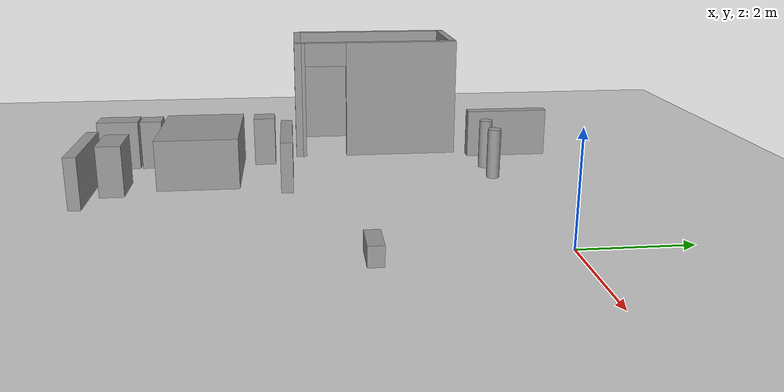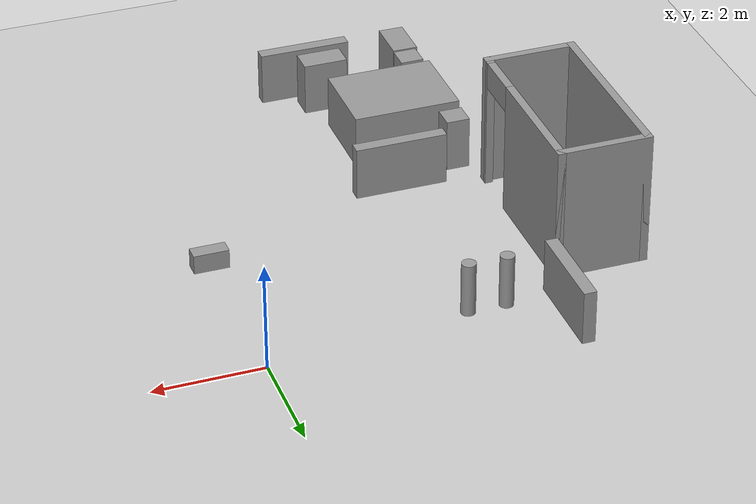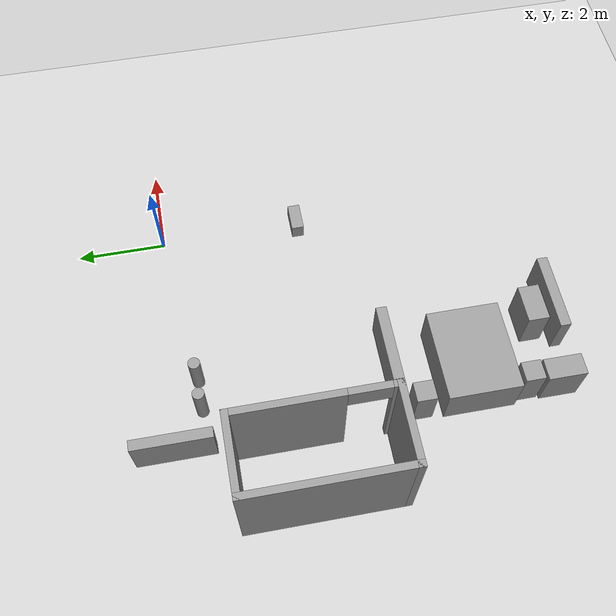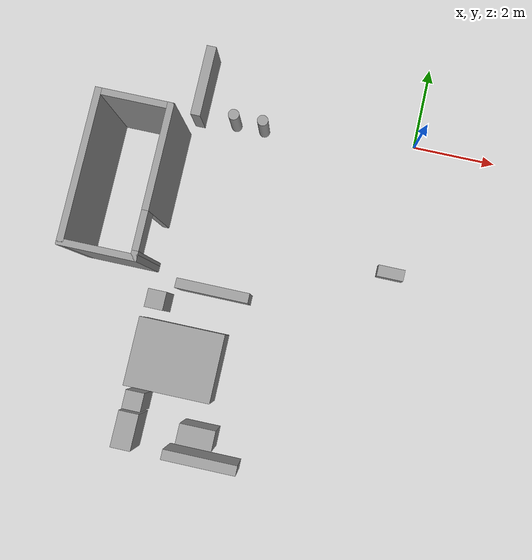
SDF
<sdf version="1.9">
 <world name="default">
  <model name="ground_plane">
   <static>true</static>
   <link name="link">
    <collision name="collision">
     <geometry><plane><normal>0 0 1</normal><size>100 100</size></plane></geometry>
     <surface><friction><ode><mu>100</mu><mu2>50</mu2></ode></friction></surface>
    </collision>
    <visual name="visual">
     <cast_shadows>false</cast_shadows>
     <geometry><plane><normal>0 0 1</normal><size>100 100</size></plane></geometry>
     <material>
      <script><uri>file://media/materials/scripts/gazebo.material</uri><name>Gazebo/Grey</name></script>
     </material>
    </visual>
   </link>
  </model>
  <model name="cma_varanda1">
   <pose>-6.3251799999999996 -2.5931299999999999 0 0 0 0</pose>
   <link name="Wall_0">
    <pose>0.80000000000000004 0 0 0 0 -1.5708</pose>
    <visual name="Wall_0_Visual_0">
     <pose>-0.55249999999999999 0 1.25 0 0 0</pose>
     <geometry><box><size>2.395 0.14999999999999999 2.5</size></box></geometry>
     <material>
      <script><uri>file://media/materials/scripts/gazebo.material</uri><name>Gazebo/Grey</name></script>
      <ambient>1 1 1 1</ambient>
     </material>
    </visual>
    <collision name="Wall_0_Collision_0">
     <geometry><box><size>2.395 0.14999999999999999 2.5</size></box></geometry>
     <pose>-0.55249999999999999 0 1.25 0 0 0</pose>
    </collision>
    <visual name="Wall_0_Visual_1">
     <pose>1.6375 0 1.25 0 0 0</pose>
     <geometry><box><size>0.22500000000000001 0.14999999999999999 2.5</size></box></geometry>
     <material>
      <script><uri>file://media/materials/scripts/gazebo.material</uri><name>Gazebo/Grey</name></script>
      <ambient>1 1 1 1</ambient>
     </material>
    </visual>
    <collision name="Wall_0_Collision_1">
     <geometry><box><size>0.22500000000000001 0.14999999999999999 2.5</size></box></geometry>
     <pose>1.6375 0 1.25 0 0 0</pose>
    </collision>
    <visual name="Wall_0_Visual_2">
     <pose>1.085 0 2.25 0 0 0</pose>
     <geometry><box><size>0.88 0.14999999999999999 0.5</size></box></geometry>
     <material>
      <script><uri>file://media/materials/scripts/gazebo.material</uri><name>Gazebo/Grey</name></script>
      <ambient>1 1 1 1</ambient>
     </material>
    </visual>
    <collision name="Wall_0_Collision_2">
     <geometry><box><size>0.88 0.14999999999999999 0.5</size></box></geometry>
     <pose>1.085 0 2.25 0 0 0</pose>
    </collision>
   </link>
   <link name="Wall_1">
    <collision name="Wall_1_Collision">
     <geometry><box><size>1.75 0.14999999999999999 2.5</size></box></geometry>
     <pose>0 0 1.25 0 0 0</pose>
    </collision>
    <visual name="Wall_1_Visual">
     <pose>0 0 1.25 0 0 0</pose>
     <geometry><box><size>1.75 0.14999999999999999 2.5</size></box></geometry>
     <material>
      <script><uri>file://media/materials/scripts/gazebo.material</uri><name>Gazebo/Grey</name></script>
      <ambient>1 1 1 1</ambient>
     </material>
    </visual>
    <pose>0 -1.675 0 0 0 3.1415899999999999</pose>
   </link>
   <link name="Wall_2">
    <collision name="Wall_2_Collision">
     <geometry><box><size>3.5 0.14999999999999999 2.5</size></box></geometry>
     <pose>0 0 1.25 0 0 0</pose>
    </collision>
    <visual name="Wall_2_Visual">
     <pose>0 0 1.25 0 0 0</pose>
     <geometry><box><size>3.5 0.14999999999999999 2.5</size></box></geometry>
     <material>
      <script><uri>file://media/materials/scripts/gazebo.material</uri><name>Gazebo/Grey</name></script>
      <ambient>1 1 1 1</ambient>
     </material>
    </visual>
    <pose>-0.80000000000000004 0 0 0 0 1.5708</pose>
   </link>
   <link name="Wall_3">
    <collision name="Wall_3_Collision">
     <geometry><box><size>1.75 0.14999999999999999 2.5</size></box></geometry>
     <pose>0 0 1.25 0 0 0</pose>
    </collision>
    <visual name="Wall_3_Visual">
     <pose>0 0 1.25 0 0 0</pose>
     <geometry><box><size>1.75 0.14999999999999999 2.5</size></box></geometry>
     <material>
      <script><uri>file://media/materials/scripts/gazebo.material</uri><name>Gazebo/Grey</name></script>
      <ambient>1 1 1 1</ambient>
     </material>
    </visual>
    <pose>0 1.675 0 0 0 0</pose>
   </link>
   <static>true</static>
  </model>
  <model name="cma_cama_c">
   <link name="link_0">
    <pose>5.0000000000000004e-06 -3.9999999999999998e-06 0 0 0 0</pose>
    <inertial>
     <mass>3.1835800000000001</mass>
     <inertia>
      <ixx>0.93486199999999997</ixx>
      <ixy>0</ixy>
      <ixz>0</ixz>
      <iyy>1.3306899999999999</iyy>
      <iyz>0</iyz>
      <izz>1.7349600000000001</izz>
     </inertia>
    </inertial>
    <visual name="visual">
     <geometry><box><size>2.0039400000000001 1.58866 1</size></box></geometry>
     <material>
      <lighting>true</lighting>
      <script><uri>file://media/materials/scripts/gazebo.material</uri><name>Gazebo/Grey</name></script>
      <ambient>0.300000012 0.300000012 0.300000012 1</ambient>
      <diffuse>0.699999988 0.699999988 0.699999988 1</diffuse>
      <specular>0.00999999978 0.00999999978 0.00999999978 1</specular>
      <emissive>0 0 0 1</emissive>
     </material>
    </visual>
    <collision name="collision">
     <geometry><box><size>2.0039400000000001 1.58866 1</size></box></geometry>
     <surface>
      <friction>
       <ode><mu>1</mu><mu2>1</mu2><fdir1>0 0 0</fdir1><slip1>0</slip1><slip2>0</slip2></ode>
       <torsional>
        <coefficient>1</coefficient>
        <patch_radius>0</patch_radius>
        <surface_radius>0</surface_radius>
        <use_patch_radius>true</use_patch_radius>
        <ode><slip>0</slip></ode>
       </torsional>
      </friction>
      <bounce><restitution_coefficient>0</restitution_coefficient><threshold>1000000</threshold></bounce>
      <contact>
       <collide_without_contact>false</collide_without_contact>
       <collide_without_contact_bitmask>1</collide_without_contact_bitmask>
       <collide_bitmask>1</collide_bitmask>
       <ode>
        <soft_cfm>0</soft_cfm>
        <soft_erp>0.20000000000000001</soft_erp>
        <kp>10000000000000</kp>
        <kd>1</kd>
        <max_vel>0.01</max_vel>
        <min_depth>0</min_depth>
       </ode>
       <bullet>
        <split_impulse>true</split_impulse>
        <split_impulse_penetration_threshold>-0.01</split_impulse_penetration_threshold>
        <soft_cfm>0</soft_cfm>
        <soft_erp>0.20000000000000001</soft_erp>
        <kp>10000000000000</kp>
        <kd>1</kd>
       </bullet>
      </contact>
     </surface>
    </collision>
   </link>
   <static>false</static>
   <pose>-4.43933 -6.2481600000000004 0.5 0 0 0</pose>
  </model>
  <model name="cma_armario_0">
   <link name="link_0">
    <pose>1.3215699999999999 0.88517800000000002 0.5 0 0 0</pose>
    <inertial>
     <mass>0.40237600000000001</mass>
     <inertia>
      <ixx>0.0353686</ixx>
      <ixy>0</ixy>
      <ixz>0</ixz>
      <iyy>0.13261600000000001</iyy>
      <iyz>0</iyz>
      <izz>0.100922</izz>
     </inertia>
    </inertial>
    <visual name="visual">
     <geometry><box><size>1.7187699999999999 0.234069 1</size></box></geometry>
     <material>
      <lighting>true</lighting>
      <script><uri>file://media/materials/scripts/gazebo.material</uri><name>Gazebo/Grey</name></script>
      <ambient>0.300000012 0.300000012 0.300000012 1</ambient>
      <diffuse>0.699999988 0.699999988 0.699999988 1</diffuse>
      <specular>0.00999999978 0.00999999978 0.00999999978 1</specular>
      <emissive>0 0 0 1</emissive>
     </material>
    </visual>
    <collision name="collision">
     <geometry><box><size>1.7187699999999999 0.234069 1</size></box></geometry>
     <surface>
      <friction>
       <ode><mu>1</mu><mu2>1</mu2><fdir1>0 0 0</fdir1><slip1>0</slip1><slip2>0</slip2></ode>
       <torsional>
        <coefficient>1</coefficient>
        <patch_radius>0</patch_radius>
        <surface_radius>0</surface_radius>
        <use_patch_radius>true</use_patch_radius>
        <ode><slip>0</slip></ode>
       </torsional>
      </friction>
      <bounce><restitution_coefficient>0</restitution_coefficient><threshold>1000000</threshold></bounce>
      <contact>
       <collide_without_contact>false</collide_without_contact>
       <collide_without_contact_bitmask>1</collide_without_contact_bitmask>
       <collide_bitmask>1</collide_bitmask>
       <ode>
        <soft_cfm>0</soft_cfm>
        <soft_erp>0.20000000000000001</soft_erp>
        <kp>10000000000000</kp>
        <kd>1</kd>
        <max_vel>0.01</max_vel>
        <min_depth>0</min_depth>
       </ode>
       <bullet>
        <split_impulse>true</split_impulse>
        <split_impulse_penetration_threshold>-0.01</split_impulse_penetration_threshold>
        <soft_cfm>0</soft_cfm>
        <soft_erp>0.20000000000000001</soft_erp>
        <kp>10000000000000</kp>
        <kd>1</kd>
       </bullet>
      </contact>
     </surface>
    </collision>
   </link>
   <static>false</static>
   <pose>-5.2775999999999996 -5.4181299999999997 1.9999999999999999e-06 -1.9999999999999999e-06 0 -0.001328</pose>
  </model>
  <model name="cma_gaveteiro_pequeno_1">
   <link name="link_0">
    <pose>0.25617400000000001 1.2505500000000001 0.5 0 0 0</pose>
    <inertial>
     <mass>0.18718599999999999</mass>
     <inertia>
      <ixx>0.018509999999999999</ixx>
      <ixy>0</ixy>
      <ixz>0</ixz>
      <iyy>0.018527600000000002</iyy>
      <iyz>0</iyz>
      <izz>0.00583981</izz>
     </inertia>
    </inertial>
    <visual name="visual">
     <geometry><box><size>0.43331700000000001 0.432002 1</size></box></geometry>
     <material>
      <lighting>true</lighting>
      <script><uri>file://media/materials/scripts/gazebo.material</uri><name>Gazebo/Grey</name></script>
      <ambient>0.300000012 0.300000012 0.300000012 1</ambient>
      <diffuse>0.699999988 0.699999988 0.699999988 1</diffuse>
      <specular>0.00999999978 0.00999999978 0.00999999978 1</specular>
      <emissive>0 0 0 1</emissive>
     </material>
    </visual>
    <collision name="collision">
     <geometry><box><size>0.43331700000000001 0.432002 1</size></box></geometry>
     <surface>
      <friction>
       <ode><mu>1</mu><mu2>1</mu2><fdir1>0 0 0</fdir1><slip1>0</slip1><slip2>0</slip2></ode>
       <torsional>
        <coefficient>1</coefficient>
        <patch_radius>0</patch_radius>
        <surface_radius>0</surface_radius>
        <use_patch_radius>true</use_patch_radius>
        <ode><slip>0</slip></ode>
       </torsional>
      </friction>
      <bounce><restitution_coefficient>0</restitution_coefficient><threshold>1000000</threshold></bounce>
      <contact>
       <collide_without_contact>false</collide_without_contact>
       <collide_without_contact_bitmask>1</collide_without_contact_bitmask>
       <collide_bitmask>1</collide_bitmask>
       <ode>
        <soft_cfm>0</soft_cfm>
        <soft_erp>0.20000000000000001</soft_erp>
        <kp>10000000000000</kp>
        <kd>1</kd>
        <max_vel>0.01</max_vel>
        <min_depth>0</min_depth>
       </ode>
       <bullet>
        <split_impulse>true</split_impulse>
        <split_impulse_penetration_threshold>-0.01</split_impulse_penetration_threshold>
        <soft_cfm>0</soft_cfm>
        <soft_erp>0.20000000000000001</soft_erp>
        <kp>10000000000000</kp>
        <kd>1</kd>
       </bullet>
      </contact>
     </surface>
    </collision>
   </link>
   <static>false</static>
   <pose>-5.4309900000000004 -6.2550699999999999 3.9999999999999998e-06 -3.0000000000000005e-06 3.0000000000000005e-06 -4.1999999999999991e-05</pose>
  </model>
  <model name="cma_armario_s_0">
   <link name="link_1">
    <pose>-1.9999999999999999e-06 -3.0000000000000001e-06 0 0 0 0</pose>
    <inertial>
     <mass>0.39015899999999998</mass>
     <inertia>
      <ixx>0.039647000000000002</ixx>
      <ixy>0</ixy>
      <ixz>0</ixz>
      <iyy>0.055070800000000003</iyy>
      <iyz>0</iyz>
      <izz>0.029691200000000001</izz>
     </inertia>
    </inertial>
    <visual name="visual">
     <geometry><box><size>0.83294199999999996 0.46839700000000001 1</size></box></geometry>
     <material>
      <lighting>true</lighting>
      <script><uri>file://media/materials/scripts/gazebo.material</uri><name>Gazebo/Grey</name></script>
      <ambient>0.300000012 0.300000012 0.300000012 1</ambient>
      <diffuse>0.699999988 0.699999988 0.699999988 1</diffuse>
      <specular>0.00999999978 0.00999999978 0.00999999978 1</specular>
      <emissive>0 0 0 1</emissive>
     </material>
    </visual>
    <collision name="collision">
     <geometry><box><size>0.83294199999999996 0.46839700000000001 1</size></box></geometry>
     <surface>
      <friction>
       <ode><mu>1</mu><mu2>1</mu2><fdir1>0 0 0</fdir1><slip1>0</slip1><slip2>0</slip2></ode>
       <torsional>
        <coefficient>1</coefficient>
        <patch_radius>0</patch_radius>
        <surface_radius>0</surface_radius>
        <use_patch_radius>true</use_patch_radius>
        <ode><slip>0</slip></ode>
       </torsional>
      </friction>
      <bounce><restitution_coefficient>0</restitution_coefficient><threshold>1000000</threshold></bounce>
      <contact>
       <collide_without_contact>false</collide_without_contact>
       <collide_without_contact_bitmask>1</collide_without_contact_bitmask>
       <collide_bitmask>1</collide_bitmask>
       <ode>
        <soft_cfm>0</soft_cfm>
        <soft_erp>0.20000000000000001</soft_erp>
        <kp>10000000000000</kp>
        <kd>1</kd>
        <max_vel>0.01</max_vel>
        <min_depth>0</min_depth>
       </ode>
       <bullet>
        <split_impulse>true</split_impulse>
        <split_impulse_penetration_threshold>-0.01</split_impulse_penetration_threshold>
        <soft_cfm>0</soft_cfm>
        <soft_erp>0.20000000000000001</soft_erp>
        <kp>10000000000000</kp>
        <kd>1</kd>
       </bullet>
      </contact>
     </surface>
    </collision>
   </link>
   <static>false</static>
   <pose>-5.1684299999999999 -8.0155499999999993 0.499996 9.9999999999999995e-07 -1.0000000000000001e-05 -1.5747800000000001</pose>
  </model>
  <model name="cma_gaveteiro_pequeno_2">
   <link name="link_0">
    <pose>0.25617400000000001 1.2505500000000001 0.5 0 0 0</pose>
    <inertial>
     <mass>0.18718599999999999</mass>
     <inertia>
      <ixx>0.018509999999999999</ixx>
      <ixy>0</ixy>
      <ixz>0</ixz>
      <iyy>0.018527600000000002</iyy>
      <iyz>0</iyz>
      <izz>0.00583981</izz>
     </inertia>
    </inertial>
    <visual name="visual">
     <geometry><box><size>0.43331700000000001 0.432002 1</size></box></geometry>
     <material>
      <lighting>true</lighting>
      <script><uri>file://media/materials/scripts/gazebo.material</uri><name>Gazebo/Grey</name></script>
      <ambient>0.300000012 0.300000012 0.300000012 1</ambient>
      <diffuse>0.699999988 0.699999988 0.699999988 1</diffuse>
      <specular>0.00999999978 0.00999999978 0.00999999978 1</specular>
      <emissive>0 0 0 1</emissive>
     </material>
    </visual>
    <collision name="collision">
     <geometry><box><size>0.43331700000000001 0.432002 1</size></box></geometry>
     <surface>
      <friction>
       <ode><mu>1</mu><mu2>1</mu2><fdir1>0 0 0</fdir1><slip1>0</slip1><slip2>0</slip2></ode>
       <torsional>
        <coefficient>1</coefficient>
        <patch_radius>0</patch_radius>
        <surface_radius>0</surface_radius>
        <use_patch_radius>true</use_patch_radius>
        <ode><slip>0</slip></ode>
       </torsional>
      </friction>
      <bounce><restitution_coefficient>0</restitution_coefficient><threshold>1000000</threshold></bounce>
      <contact>
       <collide_without_contact>false</collide_without_contact>
       <collide_without_contact_bitmask>1</collide_without_contact_bitmask>
       <collide_bitmask>1</collide_bitmask>
       <ode>
        <soft_cfm>0</soft_cfm>
        <soft_erp>0.20000000000000001</soft_erp>
        <kp>10000000000000</kp>
        <kd>1</kd>
        <max_vel>0.01</max_vel>
        <min_depth>0</min_depth>
       </ode>
       <bullet>
        <split_impulse>true</split_impulse>
        <split_impulse_penetration_threshold>-0.01</split_impulse_penetration_threshold>
        <soft_cfm>0</soft_cfm>
        <soft_erp>0.20000000000000001</soft_erp>
        <kp>10000000000000</kp>
        <kd>1</kd>
       </bullet>
      </contact>
     </surface>
    </collision>
   </link>
   <static>false</static>
   <pose>-5.3916399999999998 -8.5855200000000007 -9.9999999999999995e-07 9.9999999999999995e-07 -2.0000000000000003e-06 -4.699999999999999e-05</pose>
  </model>
  <model name="cma_armario_s_1">
   <link name="link_1">
    <pose>-1.9999999999999999e-06 -3.0000000000000001e-06 0 0 0 0</pose>
    <inertial>
     <mass>0.39015899999999998</mass>
     <inertia>
      <ixx>0.039647000000000002</ixx>
      <ixy>0</ixy>
      <ixz>0</ixz>
      <iyy>0.055070800000000003</iyy>
      <iyz>0</iyz>
      <izz>0.029691200000000001</izz>
     </inertia>
    </inertial>
    <visual name="visual">
     <geometry><box><size>0.83294199999999996 0.46839700000000001 1</size></box></geometry>
     <material>
      <lighting>true</lighting>
      <script><uri>file://media/materials/scripts/gazebo.material</uri><name>Gazebo/Grey</name></script>
      <ambient>0.300000012 0.300000012 0.300000012 1</ambient>
      <diffuse>0.699999988 0.699999988 0.699999988 1</diffuse>
      <specular>0.00999999978 0.00999999978 0.00999999978 1</specular>
      <emissive>0 0 0 1</emissive>
     </material>
    </visual>
    <collision name="collision">
     <geometry><box><size>0.83294199999999996 0.46839700000000001 1</size></box></geometry>
     <surface>
      <friction>
       <ode><mu>1</mu><mu2>1</mu2><fdir1>0 0 0</fdir1><slip1>0</slip1><slip2>0</slip2></ode>
       <torsional>
        <coefficient>1</coefficient>
        <patch_radius>0</patch_radius>
        <surface_radius>0</surface_radius>
        <use_patch_radius>true</use_patch_radius>
        <ode><slip>0</slip></ode>
       </torsional>
      </friction>
      <bounce><restitution_coefficient>0</restitution_coefficient><threshold>1000000</threshold></bounce>
      <contact>
       <collide_without_contact>false</collide_without_contact>
       <collide_without_contact_bitmask>1</collide_without_contact_bitmask>
       <collide_bitmask>1</collide_bitmask>
       <ode>
        <soft_cfm>0</soft_cfm>
        <soft_erp>0.20000000000000001</soft_erp>
        <kp>10000000000000</kp>
        <kd>1</kd>
        <max_vel>0.01</max_vel>
        <min_depth>0</min_depth>
       </ode>
       <bullet>
        <split_impulse>true</split_impulse>
        <split_impulse_penetration_threshold>-0.01</split_impulse_penetration_threshold>
        <soft_cfm>0</soft_cfm>
        <soft_erp>0.20000000000000001</soft_erp>
        <kp>10000000000000</kp>
        <kd>1</kd>
       </bullet>
      </contact>
     </surface>
    </collision>
   </link>
   <static>false</static>
   <pose>-3.5794999999999999 -7.8237300000000003 0.5 3.9999999999999998e-06 3.0000000000000005e-06 0.00045300000000000001</pose>
  </model>
  <model name="cma_armario_1">
   <link name="link_0">
    <pose>1.3215699999999999 0.88517800000000002 0.5 0 0 0</pose>
    <inertial>
     <mass>0.40237600000000001</mass>
     <inertia>
      <ixx>0.0353686</ixx>
      <ixy>0</ixy>
      <ixz>0</ixz>
      <iyy>0.13261600000000001</iyy>
      <iyz>0</iyz>
      <izz>0.100922</izz>
     </inertia>
    </inertial>
    <visual name="visual">
     <geometry><box><size>1.7187699999999999 0.234069 1</size></box></geometry>
     <material>
      <lighting>true</lighting>
      <script><uri>file://media/materials/scripts/gazebo.material</uri><name>Gazebo/Grey</name></script>
      <ambient>0.300000012 0.300000012 0.300000012 1</ambient>
      <diffuse>0.699999988 0.699999988 0.699999988 1</diffuse>
      <specular>0.00999999978 0.00999999978 0.00999999978 1</specular>
      <emissive>0 0 0 1</emissive>
     </material>
    </visual>
    <collision name="collision">
     <geometry><box><size>1.7187699999999999 0.234069 1</size></box></geometry>
     <surface>
      <friction>
       <ode><mu>1</mu><mu2>1</mu2><fdir1>0 0 0</fdir1><slip1>0</slip1><slip2>0</slip2></ode>
       <torsional>
        <coefficient>1</coefficient>
        <patch_radius>0</patch_radius>
        <surface_radius>0</surface_radius>
        <use_patch_radius>true</use_patch_radius>
        <ode><slip>0</slip></ode>
       </torsional>
      </friction>
      <bounce><restitution_coefficient>0</restitution_coefficient><threshold>1000000</threshold></bounce>
      <contact>
       <collide_without_contact>false</collide_without_contact>
       <collide_without_contact_bitmask>1</collide_without_contact_bitmask>
       <collide_bitmask>1</collide_bitmask>
       <ode>
        <soft_cfm>0</soft_cfm>
        <soft_erp>0.20000000000000001</soft_erp>
        <kp>10000000000000</kp>
        <kd>1</kd>
        <max_vel>0.01</max_vel>
        <min_depth>0</min_depth>
       </ode>
       <bullet>
        <split_impulse>true</split_impulse>
        <split_impulse_penetration_threshold>-0.01</split_impulse_penetration_threshold>
        <soft_cfm>0</soft_cfm>
        <soft_erp>0.20000000000000001</soft_erp>
        <kp>10000000000000</kp>
        <kd>1</kd>
       </bullet>
      </contact>
     </surface>
    </collision>
   </link>
   <static>false</static>
   <pose>-4.7004299999999999 -9.2265499999999996 1.9999999999999999e-06 -1.9999999999999999e-06 0 -0.001328</pose>
  </model>
  <model name="cma_armario_7">
   <link name="link_0">
    <pose>1.3215699999999999 0.88517800000000002 0.5 0 0 0</pose>
    <inertial>
     <mass>0.40237600000000001</mass>
     <inertia>
      <ixx>0.0353686</ixx>
      <ixy>0</ixy>
      <ixz>0</ixz>
      <iyy>0.13261600000000001</iyy>
      <iyz>0</iyz>
      <izz>0.100922</izz>
     </inertia>
    </inertial>
    <visual name="visual">
     <geometry><box><size>1.7187699999999999 0.234069 1</size></box></geometry>
     <material>
      <lighting>true</lighting>
      <script><uri>file://media/materials/scripts/gazebo.material</uri><name>Gazebo/Grey</name></script>
      <ambient>0.300000012 0.300000012 0.300000012 1</ambient>
      <diffuse>0.699999988 0.699999988 0.699999988 1</diffuse>
      <specular>0.00999999978 0.00999999978 0.00999999978 1</specular>
      <emissive>0 0 0 1</emissive>
     </material>
    </visual>
    <collision name="collision">
     <geometry><box><size>1.7187699999999999 0.234069 1</size></box></geometry>
     <surface>
      <friction>
       <ode><mu>1</mu><mu2>1</mu2><fdir1>0 0 0</fdir1><slip1>0</slip1><slip2>0</slip2></ode>
       <torsional>
        <coefficient>1</coefficient>
        <patch_radius>0</patch_radius>
        <surface_radius>0</surface_radius>
        <use_patch_radius>true</use_patch_radius>
        <ode><slip>0</slip></ode>
       </torsional>
      </friction>
      <bounce><restitution_coefficient>0</restitution_coefficient><threshold>1000000</threshold></bounce>
      <contact>
       <collide_without_contact>false</collide_without_contact>
       <collide_without_contact_bitmask>1</collide_without_contact_bitmask>
       <collide_bitmask>1</collide_bitmask>
       <ode>
        <soft_cfm>0</soft_cfm>
        <soft_erp>0.20000000000000001</soft_erp>
        <kp>10000000000000</kp>
        <kd>1</kd>
        <max_vel>0.01</max_vel>
        <min_depth>0</min_depth>
       </ode>
       <bullet>
        <split_impulse>true</split_impulse>
        <split_impulse_penetration_threshold>-0.01</split_impulse_penetration_threshold>
        <soft_cfm>0</soft_cfm>
        <soft_erp>0.20000000000000001</soft_erp>
        <kp>10000000000000</kp>
        <kd>1</kd>
       </bullet>
      </contact>
     </surface>
    </collision>
   </link>
   <static>false</static>
   <pose>-4.3856000000000002 -1.06549 9.9999999999999995e-07 -1.9999999999999999e-06 -2.1175823681357508e-22 1.5687299999999997</pose>
  </model>
  <model name="cma_lixo_2">
   <link name="link_1">
    <pose>0.88296200000000002 1.81586 0.5 0 0 0</pose>
    <inertial>
     <mass>0.068764400000000003</mass>
     <inertia>
      <ixx>0.00602588</ixx>
      <ixy>0</ixy>
      <ixz>0</ixz>
      <iyy>0.00602588</iyy>
      <iyz>0</iyz>
      <izz>0.00059106800000000004</izz>
     </inertia>
    </inertial>
    <visual name="visual">
     <geometry><cylinder><radius>0.13111200000000001</radius><length>1</length></cylinder></geometry>
     <material>
      <lighting>true</lighting>
      <script><uri>file://media/materials/scripts/gazebo.material</uri><name>Gazebo/Grey</name></script>
      <ambient>0.300000012 0.300000012 0.300000012 1</ambient>
      <diffuse>0.699999988 0.699999988 0.699999988 1</diffuse>
      <specular>0.00999999978 0.00999999978 0.00999999978 1</specular>
      <emissive>0 0 0 1</emissive>
     </material>
    </visual>
    <collision name="collision">
     <geometry><cylinder><radius>0.13111200000000001</radius><length>1</length></cylinder></geometry>
     <surface>
      <friction>
       <ode><mu>1</mu><mu2>1</mu2><fdir1>0 0 0</fdir1><slip1>0</slip1><slip2>0</slip2></ode>
       <torsional>
        <coefficient>1</coefficient>
        <patch_radius>0</patch_radius>
        <surface_radius>0</surface_radius>
        <use_patch_radius>true</use_patch_radius>
        <ode><slip>0</slip></ode>
       </torsional>
      </friction>
      <bounce><restitution_coefficient>0</restitution_coefficient><threshold>1000000</threshold></bounce>
      <contact>
       <collide_without_contact>false</collide_without_contact>
       <collide_without_contact_bitmask>1</collide_without_contact_bitmask>
       <collide_bitmask>1</collide_bitmask>
       <ode>
        <soft_cfm>0</soft_cfm>
        <soft_erp>0.20000000000000001</soft_erp>
        <kp>10000000000000</kp>
        <kd>1</kd>
        <max_vel>0.01</max_vel>
        <min_depth>0</min_depth>
       </ode>
       <bullet>
        <split_impulse>true</split_impulse>
        <split_impulse_penetration_threshold>-0.01</split_impulse_penetration_threshold>
        <soft_cfm>0</soft_cfm>
        <soft_erp>0.20000000000000001</soft_erp>
        <kp>10000000000000</kp>
        <kd>1</kd>
       </bullet>
      </contact>
     </surface>
    </collision>
   </link>
   <static>false</static>
   <pose>-5.2734199999999998 -2.2134499999999999 -9.9999999999999995e-07 0 0 0</pose>
  </model>
  <model name="cma_lixo_3">
   <link name="link_1">
    <pose>0.88296200000000002 1.81586 0.5 0 0 0</pose>
    <inertial>
     <mass>0.068764400000000003</mass>
     <inertia>
      <ixx>0.00602588</ixx>
      <ixy>0</ixy>
      <ixz>0</ixz>
      <iyy>0.00602588</iyy>
      <iyz>0</iyz>
      <izz>0.00059106800000000004</izz>
     </inertia>
    </inertial>
    <visual name="visual">
     <geometry><cylinder><radius>0.13111200000000001</radius><length>1</length></cylinder></geometry>
     <material>
      <lighting>true</lighting>
      <script><uri>file://media/materials/scripts/gazebo.material</uri><name>Gazebo/Grey</name></script>
      <ambient>0.300000012 0.300000012 0.300000012 1</ambient>
      <diffuse>0.699999988 0.699999988 0.699999988 1</diffuse>
      <specular>0.00999999978 0.00999999978 0.00999999978 1</specular>
      <emissive>0 0 0 1</emissive>
     </material>
    </visual>
    <collision name="collision">
     <geometry><cylinder><radius>0.13111200000000001</radius><length>1</length></cylinder></geometry>
     <surface>
      <friction>
       <ode><mu>1</mu><mu2>1</mu2><fdir1>0 0 0</fdir1><slip1>0</slip1><slip2>0</slip2></ode>
       <torsional>
        <coefficient>1</coefficient>
        <patch_radius>0</patch_radius>
        <surface_radius>0</surface_radius>
        <use_patch_radius>true</use_patch_radius>
        <ode><slip>0</slip></ode>
       </torsional>
      </friction>
      <bounce><restitution_coefficient>0</restitution_coefficient><threshold>1000000</threshold></bounce>
      <contact>
       <collide_without_contact>false</collide_without_contact>
       <collide_without_contact_bitmask>1</collide_without_contact_bitmask>
       <collide_bitmask>1</collide_bitmask>
       <ode>
        <soft_cfm>0</soft_cfm>
        <soft_erp>0.20000000000000001</soft_erp>
        <kp>10000000000000</kp>
        <kd>1</kd>
        <max_vel>0.01</max_vel>
        <min_depth>0</min_depth>
       </ode>
       <bullet>
        <split_impulse>true</split_impulse>
        <split_impulse_penetration_threshold>-0.01</split_impulse_penetration_threshold>
        <soft_cfm>0</soft_cfm>
        <soft_erp>0.20000000000000001</soft_erp>
        <kp>10000000000000</kp>
        <kd>1</kd>
       </bullet>
      </contact>
     </surface>
    </collision>
   </link>
   <static>false</static>
   <pose>-4.5749500000000003 -2.2090000000000001 -9.9999999999999995e-07 0 0 0</pose>
  </model>
  <model name="cma_barra_70cm">
   <link name="link_2">
    <pose>3.3538399999999999 1.20238 0.5 0 0 0</pose>
    <inertial>
     <mass>0.063136800000000007</mass>
     <inertia>
      <ixx>0.0010654200000000001</ixx>
      <ixy>0</ixy>
      <ixz>0</ixz>
      <iyy>0.0028472699999999998</iyy>
      <iyz>0</iyz>
      <izz>0.0025815</izz>
     </inertia>
    </inertial>
    <visual name="visual">
     <geometry><box><size>0.64393800000000001 0.27572799999999997 0.35573700000000003</size></box></geometry>
     <material>
      <lighting>true</lighting>
      <script><uri>file://media/materials/scripts/gazebo.material</uri><name>Gazebo/Grey</name></script>
      <ambient>0.300000012 0.300000012 0.300000012 1</ambient>
      <diffuse>0.699999988 0.699999988 0.699999988 1</diffuse>
      <specular>0.00999999978 0.00999999978 0.00999999978 1</specular>
      <emissive>0 0 0 1</emissive>
     </material>
    </visual>
    <collision name="collision">
     <geometry><box><size>0.64393800000000001 0.27572799999999997 0.35573700000000003</size></box></geometry>
     <surface>
      <friction>
       <ode><mu>1</mu><mu2>1</mu2><fdir1>0 0 0</fdir1><slip1>0</slip1><slip2>0</slip2></ode>
       <torsional>
        <coefficient>1</coefficient>
        <patch_radius>0</patch_radius>
        <surface_radius>0</surface_radius>
        <use_patch_radius>true</use_patch_radius>
        <ode><slip>0</slip></ode>
       </torsional>
      </friction>
      <bounce><restitution_coefficient>0</restitution_coefficient><threshold>1000000</threshold></bounce>
      <contact>
       <collide_without_contact>false</collide_without_contact>
       <collide_without_contact_bitmask>1</collide_without_contact_bitmask>
       <collide_bitmask>1</collide_bitmask>
       <ode>
        <soft_cfm>0</soft_cfm>
        <soft_erp>0.20000000000000001</soft_erp>
        <kp>10000000000000</kp>
        <kd>1</kd>
        <max_vel>0.01</max_vel>
        <min_depth>0</min_depth>
       </ode>
       <bullet>
        <split_impulse>true</split_impulse>
        <split_impulse_penetration_threshold>-0.01</split_impulse_penetration_threshold>
        <soft_cfm>0</soft_cfm>
        <soft_erp>0.20000000000000001</soft_erp>
        <kp>10000000000000</kp>
        <kd>1</kd>
       </bullet>
      </contact>
     </surface>
    </collision>
   </link>
   <static>false</static>
   <pose>-3.3250600000000001 -4.4030699999999996 -0.322102 -2.6999999999999999e-05 1.6543612251060553e-24 -0.00067899999999999992</pose>
  </model>
 </world>
</sdf>
